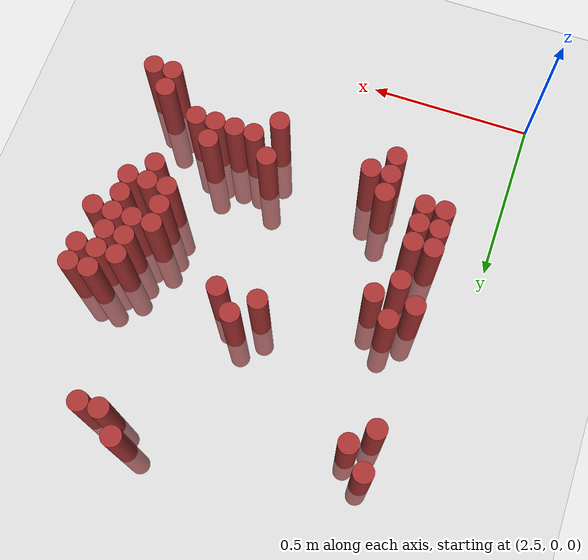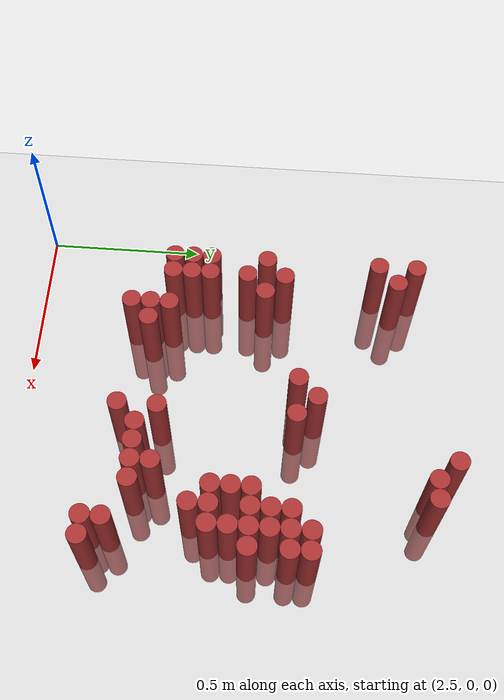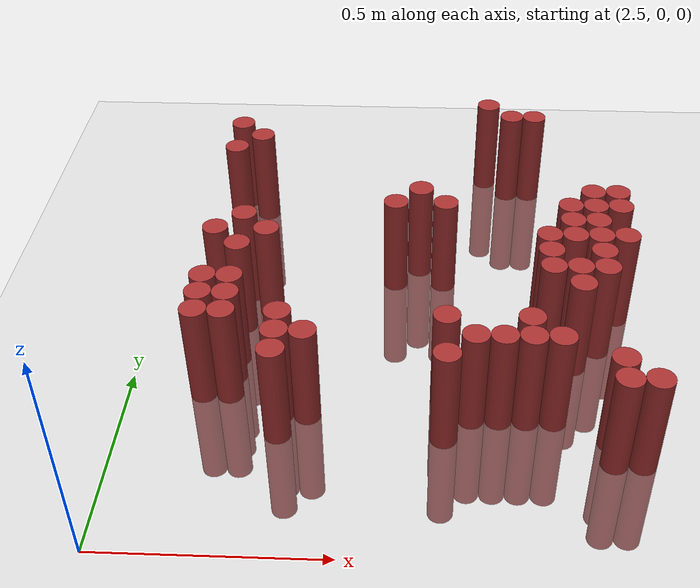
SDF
<sdf version="1.6">
 <world name="default">
  <model name="ground_plane">
   <static>1</static>
   <link name="link">
    <collision name="collision">
     <geometry><plane><normal>0 0 1</normal><size>100 100</size></plane></geometry>
     <surface><friction><ode><mu>100</mu><mu2>50</mu2></ode></friction></surface>
    </collision>
    <visual name="visual">
     <cast_shadows>0</cast_shadows>
     <geometry><plane><normal>0 0 1</normal><size>100 100</size></plane></geometry>
     <material>
      <script><uri>file://media/materials/scripts/gazebo.material</uri><name>Gazebo/Grey</name></script>
     </material>
    </visual>
   </link>
  </model>
  <model name="unit_cylinder_158">
   <static>1</static>
   <pose>3.330000 1.350000 0.000000 0.000000 0.000000 0.000000</pose>
   <link name="link">
    <inertial>
     <mass>1</mass>
     <inertia><ixx>0.145833</ixx><ixy>0</ixy><ixz>0</ixz><iyy>0.145833</iyy><iyz>0</iyz><izz>0.125</izz></inertia>
    </inertial>
    <collision name="collision">
     <geometry><cylinder><radius>0.030000</radius><length>0.5</length></cylinder></geometry>
    </collision>
    <visual name="visual">
     <geometry><cylinder><radius>0.030000</radius><length>0.5</length></cylinder></geometry>
     <material>
      <ambient>0.648000 0.192000 0.192000 1</ambient>
      <diffuse>0.648000 0.192000 0.192000 1</diffuse>
     </material>
     <material>
      <script><name>Gazebo/Grey</name><uri>file://media/materials/scripts/gazebo.material</uri></script>
     </material>
    </visual>
   </link>
  </model>
  <model name="unit_cylinder_162">
   <static>1</static>
   <pose>3.390000 1.290000 0.000000 0.000000 0.000000 0.000000</pose>
   <link name="link">
    <inertial>
     <mass>1</mass>
     <inertia><ixx>0.145833</ixx><ixy>0</ixy><ixz>0</ixz><iyy>0.145833</iyy><iyz>0</iyz><izz>0.125</izz></inertia>
    </inertial>
    <collision name="collision">
     <geometry><cylinder><radius>0.030000</radius><length>0.5</length></cylinder></geometry>
    </collision>
    <visual name="visual">
     <geometry><cylinder><radius>0.030000</radius><length>0.5</length></cylinder></geometry>
     <material>
      <ambient>0.648000 0.192000 0.192000 1</ambient>
      <diffuse>0.648000 0.192000 0.192000 1</diffuse>
     </material>
     <material>
      <script><name>Gazebo/Grey</name><uri>file://media/materials/scripts/gazebo.material</uri></script>
     </material>
    </visual>
   </link>
  </model>
  <model name="unit_cylinder_163">
   <static>1</static>
   <pose>3.450000 1.290000 0.000000 0.000000 0.000000 0.000000</pose>
   <link name="link">
    <inertial>
     <mass>1</mass>
     <inertia><ixx>0.145833</ixx><ixy>0</ixy><ixz>0</ixz><iyy>0.145833</iyy><iyz>0</iyz><izz>0.125</izz></inertia>
    </inertial>
    <collision name="collision">
     <geometry><cylinder><radius>0.030000</radius><length>0.5</length></cylinder></geometry>
    </collision>
    <visual name="visual">
     <geometry><cylinder><radius>0.030000</radius><length>0.5</length></cylinder></geometry>
     <material>
      <ambient>0.648000 0.192000 0.192000 1</ambient>
      <diffuse>0.648000 0.192000 0.192000 1</diffuse>
     </material>
     <material>
      <script><name>Gazebo/Grey</name><uri>file://media/materials/scripts/gazebo.material</uri></script>
     </material>
    </visual>
   </link>
  </model>
  <model name="unit_cylinder_164">
   <static>1</static>
   <pose>2.670000 1.230000 0.000000 0.000000 0.000000 0.000000</pose>
   <link name="link">
    <inertial>
     <mass>1</mass>
     <inertia><ixx>0.145833</ixx><ixy>0</ixy><ixz>0</ixz><iyy>0.145833</iyy><iyz>0</iyz><izz>0.125</izz></inertia>
    </inertial>
    <collision name="collision">
     <geometry><cylinder><radius>0.030000</radius><length>0.5</length></cylinder></geometry>
    </collision>
    <visual name="visual">
     <geometry><cylinder><radius>0.030000</radius><length>0.5</length></cylinder></geometry>
     <material>
      <ambient>0.648000 0.192000 0.192000 1</ambient>
      <diffuse>0.648000 0.192000 0.192000 1</diffuse>
     </material>
     <material>
      <script><name>Gazebo/Grey</name><uri>file://media/materials/scripts/gazebo.material</uri></script>
     </material>
    </visual>
   </link>
  </model>
  <model name="unit_cylinder_165">
   <static>1</static>
   <pose>2.730000 1.170000 0.000000 0.000000 0.000000 0.000000</pose>
   <link name="link">
    <inertial>
     <mass>1</mass>
     <inertia><ixx>0.145833</ixx><ixy>0</ixy><ixz>0</ixz><iyy>0.145833</iyy><iyz>0</iyz><izz>0.125</izz></inertia>
    </inertial>
    <collision name="collision">
     <geometry><cylinder><radius>0.030000</radius><length>0.5</length></cylinder></geometry>
    </collision>
    <visual name="visual">
     <geometry><cylinder><radius>0.030000</radius><length>0.5</length></cylinder></geometry>
     <material>
      <ambient>0.648000 0.192000 0.192000 1</ambient>
      <diffuse>0.648000 0.192000 0.192000 1</diffuse>
     </material>
     <material>
      <script><name>Gazebo/Grey</name><uri>file://media/materials/scripts/gazebo.material</uri></script>
     </material>
    </visual>
   </link>
  </model>
  <model name="unit_cylinder_167">
   <static>1</static>
   <pose>2.670000 1.110000 0.000000 0.000000 0.000000 0.000000</pose>
   <link name="link">
    <inertial>
     <mass>1</mass>
     <inertia><ixx>0.145833</ixx><ixy>0</ixy><ixz>0</ixz><iyy>0.145833</iyy><iyz>0</iyz><izz>0.125</izz></inertia>
    </inertial>
    <collision name="collision">
     <geometry><cylinder><radius>0.030000</radius><length>0.5</length></cylinder></geometry>
    </collision>
    <visual name="visual">
     <geometry><cylinder><radius>0.030000</radius><length>0.5</length></cylinder></geometry>
     <material>
      <ambient>0.648000 0.192000 0.192000 1</ambient>
      <diffuse>0.648000 0.192000 0.192000 1</diffuse>
     </material>
     <material>
      <script><name>Gazebo/Grey</name><uri>file://media/materials/scripts/gazebo.material</uri></script>
     </material>
    </visual>
   </link>
  </model>
  <model name="unit_cylinder_176">
   <static>1</static>
   <pose>3.150000 0.930000 0.000000 0.000000 0.000000 0.000000</pose>
   <link name="link">
    <inertial>
     <mass>1</mass>
     <inertia><ixx>0.145833</ixx><ixy>0</ixy><ixz>0</ixz><iyy>0.145833</iyy><iyz>0</iyz><izz>0.125</izz></inertia>
    </inertial>
    <collision name="collision">
     <geometry><cylinder><radius>0.030000</radius><length>0.5</length></cylinder></geometry>
    </collision>
    <visual name="visual">
     <geometry><cylinder><radius>0.030000</radius><length>0.5</length></cylinder></geometry>
     <material>
      <ambient>0.648000 0.192000 0.192000 1</ambient>
      <diffuse>0.648000 0.192000 0.192000 1</diffuse>
     </material>
     <material>
      <script><name>Gazebo/Grey</name><uri>file://media/materials/scripts/gazebo.material</uri></script>
     </material>
    </visual>
   </link>
  </model>
  <model name="unit_cylinder_177">
   <static>1</static>
   <pose>3.570000 0.930000 0.000000 0.000000 0.000000 0.000000</pose>
   <link name="link">
    <inertial>
     <mass>1</mass>
     <inertia><ixx>0.145833</ixx><ixy>0</ixy><ixz>0</ixz><iyy>0.145833</iyy><iyz>0</iyz><izz>0.125</izz></inertia>
    </inertial>
    <collision name="collision">
     <geometry><cylinder><radius>0.030000</radius><length>0.5</length></cylinder></geometry>
    </collision>
    <visual name="visual">
     <geometry><cylinder><radius>0.030000</radius><length>0.5</length></cylinder></geometry>
     <material>
      <ambient>0.648000 0.192000 0.192000 1</ambient>
      <diffuse>0.648000 0.192000 0.192000 1</diffuse>
     </material>
     <material>
      <script><name>Gazebo/Grey</name><uri>file://media/materials/scripts/gazebo.material</uri></script>
     </material>
    </visual>
   </link>
  </model>
  <model name="unit_cylinder_178">
   <static>1</static>
   <pose>3.630000 0.930000 0.000000 0.000000 0.000000 0.000000</pose>
   <link name="link">
    <inertial>
     <mass>1</mass>
     <inertia><ixx>0.145833</ixx><ixy>0</ixy><ixz>0</ixz><iyy>0.145833</iyy><iyz>0</iyz><izz>0.125</izz></inertia>
    </inertial>
    <collision name="collision">
     <geometry><cylinder><radius>0.030000</radius><length>0.5</length></cylinder></geometry>
    </collision>
    <visual name="visual">
     <geometry><cylinder><radius>0.030000</radius><length>0.5</length></cylinder></geometry>
     <material>
      <ambient>0.648000 0.192000 0.192000 1</ambient>
      <diffuse>0.648000 0.192000 0.192000 1</diffuse>
     </material>
     <material>
      <script><name>Gazebo/Grey</name><uri>file://media/materials/scripts/gazebo.material</uri></script>
     </material>
    </visual>
   </link>
  </model>
  <model name="unit_cylinder_180">
   <static>1</static>
   <pose>3.090000 0.870000 0.000000 0.000000 0.000000 0.000000</pose>
   <link name="link">
    <inertial>
     <mass>1</mass>
     <inertia><ixx>0.145833</ixx><ixy>0</ixy><ixz>0</ixz><iyy>0.145833</iyy><iyz>0</iyz><izz>0.125</izz></inertia>
    </inertial>
    <collision name="collision">
     <geometry><cylinder><radius>0.030000</radius><length>0.5</length></cylinder></geometry>
    </collision>
    <visual name="visual">
     <geometry><cylinder><radius>0.030000</radius><length>0.5</length></cylinder></geometry>
     <material>
      <ambient>0.648000 0.192000 0.192000 1</ambient>
      <diffuse>0.648000 0.192000 0.192000 1</diffuse>
     </material>
     <material>
      <script><name>Gazebo/Grey</name><uri>file://media/materials/scripts/gazebo.material</uri></script>
     </material>
    </visual>
   </link>
  </model>
  <model name="unit_cylinder_181">
   <static>1</static>
   <pose>3.210000 0.870000 0.000000 0.000000 0.000000 0.000000</pose>
   <link name="link">
    <inertial>
     <mass>1</mass>
     <inertia><ixx>0.145833</ixx><ixy>0</ixy><ixz>0</ixz><iyy>0.145833</iyy><iyz>0</iyz><izz>0.125</izz></inertia>
    </inertial>
    <collision name="collision">
     <geometry><cylinder><radius>0.030000</radius><length>0.5</length></cylinder></geometry>
    </collision>
    <visual name="visual">
     <geometry><cylinder><radius>0.030000</radius><length>0.5</length></cylinder></geometry>
     <material>
      <ambient>0.648000 0.192000 0.192000 1</ambient>
      <diffuse>0.648000 0.192000 0.192000 1</diffuse>
     </material>
     <material>
      <script><name>Gazebo/Grey</name><uri>file://media/materials/scripts/gazebo.material</uri></script>
     </material>
    </visual>
   </link>
  </model>
  <model name="unit_cylinder_182">
   <static>1</static>
   <pose>3.510000 0.870000 0.000000 0.000000 0.000000 0.000000</pose>
   <link name="link">
    <inertial>
     <mass>1</mass>
     <inertia><ixx>0.145833</ixx><ixy>0</ixy><ixz>0</ixz><iyy>0.145833</iyy><iyz>0</iyz><izz>0.125</izz></inertia>
    </inertial>
    <collision name="collision">
     <geometry><cylinder><radius>0.030000</radius><length>0.5</length></cylinder></geometry>
    </collision>
    <visual name="visual">
     <geometry><cylinder><radius>0.030000</radius><length>0.5</length></cylinder></geometry>
     <material>
      <ambient>0.648000 0.192000 0.192000 1</ambient>
      <diffuse>0.648000 0.192000 0.192000 1</diffuse>
     </material>
     <material>
      <script><name>Gazebo/Grey</name><uri>file://media/materials/scripts/gazebo.material</uri></script>
     </material>
    </visual>
   </link>
  </model>
  <model name="unit_cylinder_183">
   <static>1</static>
   <pose>3.570000 0.870000 0.000000 0.000000 0.000000 0.000000</pose>
   <link name="link">
    <inertial>
     <mass>1</mass>
     <inertia><ixx>0.145833</ixx><ixy>0</ixy><ixz>0</ixz><iyy>0.145833</iyy><iyz>0</iyz><izz>0.125</izz></inertia>
    </inertial>
    <collision name="collision">
     <geometry><cylinder><radius>0.030000</radius><length>0.5</length></cylinder></geometry>
    </collision>
    <visual name="visual">
     <geometry><cylinder><radius>0.030000</radius><length>0.5</length></cylinder></geometry>
     <material>
      <ambient>0.648000 0.192000 0.192000 1</ambient>
      <diffuse>0.648000 0.192000 0.192000 1</diffuse>
     </material>
     <material>
      <script><name>Gazebo/Grey</name><uri>file://media/materials/scripts/gazebo.material</uri></script>
     </material>
    </visual>
   </link>
  </model>
  <model name="unit_cylinder_184">
   <static>1</static>
   <pose>3.630000 0.870000 0.000000 0.000000 0.000000 0.000000</pose>
   <link name="link">
    <inertial>
     <mass>1</mass>
     <inertia><ixx>0.145833</ixx><ixy>0</ixy><ixz>0</ixz><iyy>0.145833</iyy><iyz>0</iyz><izz>0.125</izz></inertia>
    </inertial>
    <collision name="collision">
     <geometry><cylinder><radius>0.030000</radius><length>0.5</length></cylinder></geometry>
    </collision>
    <visual name="visual">
     <geometry><cylinder><radius>0.030000</radius><length>0.5</length></cylinder></geometry>
     <material>
      <ambient>0.648000 0.192000 0.192000 1</ambient>
      <diffuse>0.648000 0.192000 0.192000 1</diffuse>
     </material>
     <material>
      <script><name>Gazebo/Grey</name><uri>file://media/materials/scripts/gazebo.material</uri></script>
     </material>
    </visual>
   </link>
  </model>
  <model name="unit_cylinder_185">
   <static>1</static>
   <pose>2.730000 0.810000 0.000000 0.000000 0.000000 0.000000</pose>
   <link name="link">
    <inertial>
     <mass>1</mass>
     <inertia><ixx>0.145833</ixx><ixy>0</ixy><ixz>0</ixz><iyy>0.145833</iyy><iyz>0</iyz><izz>0.125</izz></inertia>
    </inertial>
    <collision name="collision">
     <geometry><cylinder><radius>0.030000</radius><length>0.5</length></cylinder></geometry>
    </collision>
    <visual name="visual">
     <geometry><cylinder><radius>0.030000</radius><length>0.5</length></cylinder></geometry>
     <material>
      <ambient>0.648000 0.192000 0.192000 1</ambient>
      <diffuse>0.648000 0.192000 0.192000 1</diffuse>
     </material>
     <material>
      <script><name>Gazebo/Grey</name><uri>file://media/materials/scripts/gazebo.material</uri></script>
     </material>
    </visual>
   </link>
  </model>
  <model name="unit_cylinder_186">
   <static>1</static>
   <pose>3.510000 0.810000 0.000000 0.000000 0.000000 0.000000</pose>
   <link name="link">
    <inertial>
     <mass>1</mass>
     <inertia><ixx>0.145833</ixx><ixy>0</ixy><ixz>0</ixz><iyy>0.145833</iyy><iyz>0</iyz><izz>0.125</izz></inertia>
    </inertial>
    <collision name="collision">
     <geometry><cylinder><radius>0.030000</radius><length>0.5</length></cylinder></geometry>
    </collision>
    <visual name="visual">
     <geometry><cylinder><radius>0.030000</radius><length>0.5</length></cylinder></geometry>
     <material>
      <ambient>0.648000 0.192000 0.192000 1</ambient>
      <diffuse>0.648000 0.192000 0.192000 1</diffuse>
     </material>
     <material>
      <script><name>Gazebo/Grey</name><uri>file://media/materials/scripts/gazebo.material</uri></script>
     </material>
    </visual>
   </link>
  </model>
  <model name="unit_cylinder_187">
   <static>1</static>
   <pose>3.570000 0.810000 0.000000 0.000000 0.000000 0.000000</pose>
   <link name="link">
    <inertial>
     <mass>1</mass>
     <inertia><ixx>0.145833</ixx><ixy>0</ixy><ixz>0</ixz><iyy>0.145833</iyy><iyz>0</iyz><izz>0.125</izz></inertia>
    </inertial>
    <collision name="collision">
     <geometry><cylinder><radius>0.030000</radius><length>0.5</length></cylinder></geometry>
    </collision>
    <visual name="visual">
     <geometry><cylinder><radius>0.030000</radius><length>0.5</length></cylinder></geometry>
     <material>
      <ambient>0.648000 0.192000 0.192000 1</ambient>
      <diffuse>0.648000 0.192000 0.192000 1</diffuse>
     </material>
     <material>
      <script><name>Gazebo/Grey</name><uri>file://media/materials/scripts/gazebo.material</uri></script>
     </material>
    </visual>
   </link>
  </model>
  <model name="unit_cylinder_189">
   <static>1</static>
   <pose>2.670000 0.750000 0.000000 0.000000 0.000000 0.000000</pose>
   <link name="link">
    <inertial>
     <mass>1</mass>
     <inertia><ixx>0.145833</ixx><ixy>0</ixy><ixz>0</ixz><iyy>0.145833</iyy><iyz>0</iyz><izz>0.125</izz></inertia>
    </inertial>
    <collision name="collision">
     <geometry><cylinder><radius>0.030000</radius><length>0.5</length></cylinder></geometry>
    </collision>
    <visual name="visual">
     <geometry><cylinder><radius>0.030000</radius><length>0.5</length></cylinder></geometry>
     <material>
      <ambient>0.648000 0.192000 0.192000 1</ambient>
      <diffuse>0.648000 0.192000 0.192000 1</diffuse>
     </material>
     <material>
      <script><name>Gazebo/Grey</name><uri>file://media/materials/scripts/gazebo.material</uri></script>
     </material>
    </visual>
   </link>
  </model>
  <model name="unit_cylinder_190">
   <static>1</static>
   <pose>2.790000 0.750000 0.000000 0.000000 0.000000 0.000000</pose>
   <link name="link">
    <inertial>
     <mass>1</mass>
     <inertia><ixx>0.145833</ixx><ixy>0</ixy><ixz>0</ixz><iyy>0.145833</iyy><iyz>0</iyz><izz>0.125</izz></inertia>
    </inertial>
    <collision name="collision">
     <geometry><cylinder><radius>0.030000</radius><length>0.5</length></cylinder></geometry>
    </collision>
    <visual name="visual">
     <geometry><cylinder><radius>0.030000</radius><length>0.5</length></cylinder></geometry>
     <material>
      <ambient>0.648000 0.192000 0.192000 1</ambient>
      <diffuse>0.648000 0.192000 0.192000 1</diffuse>
     </material>
     <material>
      <script><name>Gazebo/Grey</name><uri>file://media/materials/scripts/gazebo.material</uri></script>
     </material>
    </visual>
   </link>
  </model>
  <model name="unit_cylinder_191">
   <static>1</static>
   <pose>3.450000 0.750000 0.000000 0.000000 0.000000 0.000000</pose>
   <link name="link">
    <inertial>
     <mass>1</mass>
     <inertia><ixx>0.145833</ixx><ixy>0</ixy><ixz>0</ixz><iyy>0.145833</iyy><iyz>0</iyz><izz>0.125</izz></inertia>
    </inertial>
    <collision name="collision">
     <geometry><cylinder><radius>0.030000</radius><length>0.5</length></cylinder></geometry>
    </collision>
    <visual name="visual">
     <geometry><cylinder><radius>0.030000</radius><length>0.5</length></cylinder></geometry>
     <material>
      <ambient>0.648000 0.192000 0.192000 1</ambient>
      <diffuse>0.648000 0.192000 0.192000 1</diffuse>
     </material>
     <material>
      <script><name>Gazebo/Grey</name><uri>file://media/materials/scripts/gazebo.material</uri></script>
     </material>
    </visual>
   </link>
  </model>
  <model name="unit_cylinder_192">
   <static>1</static>
   <pose>3.510000 0.750000 0.000000 0.000000 0.000000 0.000000</pose>
   <link name="link">
    <inertial>
     <mass>1</mass>
     <inertia><ixx>0.145833</ixx><ixy>0</ixy><ixz>0</ixz><iyy>0.145833</iyy><iyz>0</iyz><izz>0.125</izz></inertia>
    </inertial>
    <collision name="collision">
     <geometry><cylinder><radius>0.030000</radius><length>0.5</length></cylinder></geometry>
    </collision>
    <visual name="visual">
     <geometry><cylinder><radius>0.030000</radius><length>0.5</length></cylinder></geometry>
     <material>
      <ambient>0.648000 0.192000 0.192000 1</ambient>
      <diffuse>0.648000 0.192000 0.192000 1</diffuse>
     </material>
     <material>
      <script><name>Gazebo/Grey</name><uri>file://media/materials/scripts/gazebo.material</uri></script>
     </material>
    </visual>
   </link>
  </model>
  <model name="unit_cylinder_193">
   <static>1</static>
   <pose>3.570000 0.750000 0.000000 0.000000 0.000000 0.000000</pose>
   <link name="link">
    <inertial>
     <mass>1</mass>
     <inertia><ixx>0.145833</ixx><ixy>0</ixy><ixz>0</ixz><iyy>0.145833</iyy><iyz>0</iyz><izz>0.125</izz></inertia>
    </inertial>
    <collision name="collision">
     <geometry><cylinder><radius>0.030000</radius><length>0.5</length></cylinder></geometry>
    </collision>
    <visual name="visual">
     <geometry><cylinder><radius>0.030000</radius><length>0.5</length></cylinder></geometry>
     <material>
      <ambient>0.648000 0.192000 0.192000 1</ambient>
      <diffuse>0.648000 0.192000 0.192000 1</diffuse>
     </material>
     <material>
      <script><name>Gazebo/Grey</name><uri>file://media/materials/scripts/gazebo.material</uri></script>
     </material>
    </visual>
   </link>
  </model>
  <model name="unit_cylinder_194">
   <static>1</static>
   <pose>3.630000 0.750000 0.000000 0.000000 0.000000 0.000000</pose>
   <link name="link">
    <inertial>
     <mass>1</mass>
     <inertia><ixx>0.145833</ixx><ixy>0</ixy><ixz>0</ixz><iyy>0.145833</iyy><iyz>0</iyz><izz>0.125</izz></inertia>
    </inertial>
    <collision name="collision">
     <geometry><cylinder><radius>0.030000</radius><length>0.5</length></cylinder></geometry>
    </collision>
    <visual name="visual">
     <geometry><cylinder><radius>0.030000</radius><length>0.5</length></cylinder></geometry>
     <material>
      <ambient>0.648000 0.192000 0.192000 1</ambient>
      <diffuse>0.648000 0.192000 0.192000 1</diffuse>
     </material>
     <material>
      <script><name>Gazebo/Grey</name><uri>file://media/materials/scripts/gazebo.material</uri></script>
     </material>
    </visual>
   </link>
  </model>
  <model name="unit_cylinder_197">
   <static>1</static>
   <pose>2.730000 0.690000 0.000000 0.000000 0.000000 0.000000</pose>
   <link name="link">
    <inertial>
     <mass>1</mass>
     <inertia><ixx>0.145833</ixx><ixy>0</ixy><ixz>0</ixz><iyy>0.145833</iyy><iyz>0</iyz><izz>0.125</izz></inertia>
    </inertial>
    <collision name="collision">
     <geometry><cylinder><radius>0.030000</radius><length>0.5</length></cylinder></geometry>
    </collision>
    <visual name="visual">
     <geometry><cylinder><radius>0.030000</radius><length>0.5</length></cylinder></geometry>
     <material>
      <ambient>0.648000 0.192000 0.192000 1</ambient>
      <diffuse>0.648000 0.192000 0.192000 1</diffuse>
     </material>
     <material>
      <script><name>Gazebo/Grey</name><uri>file://media/materials/scripts/gazebo.material</uri></script>
     </material>
    </visual>
   </link>
  </model>
  <model name="unit_cylinder_198">
   <static>1</static>
   <pose>3.450000 0.690000 0.000000 0.000000 0.000000 0.000000</pose>
   <link name="link">
    <inertial>
     <mass>1</mass>
     <inertia><ixx>0.145833</ixx><ixy>0</ixy><ixz>0</ixz><iyy>0.145833</iyy><iyz>0</iyz><izz>0.125</izz></inertia>
    </inertial>
    <collision name="collision">
     <geometry><cylinder><radius>0.030000</radius><length>0.5</length></cylinder></geometry>
    </collision>
    <visual name="visual">
     <geometry><cylinder><radius>0.030000</radius><length>0.5</length></cylinder></geometry>
     <material>
      <ambient>0.648000 0.192000 0.192000 1</ambient>
      <diffuse>0.648000 0.192000 0.192000 1</diffuse>
     </material>
     <material>
      <script><name>Gazebo/Grey</name><uri>file://media/materials/scripts/gazebo.material</uri></script>
     </material>
    </visual>
   </link>
  </model>
  <model name="unit_cylinder_199">
   <static>1</static>
   <pose>3.570000 0.690000 0.000000 0.000000 0.000000 0.000000</pose>
   <link name="link">
    <inertial>
     <mass>1</mass>
     <inertia><ixx>0.145833</ixx><ixy>0</ixy><ixz>0</ixz><iyy>0.145833</iyy><iyz>0</iyz><izz>0.125</izz></inertia>
    </inertial>
    <collision name="collision">
     <geometry><cylinder><radius>0.030000</radius><length>0.5</length></cylinder></geometry>
    </collision>
    <visual name="visual">
     <geometry><cylinder><radius>0.030000</radius><length>0.5</length></cylinder></geometry>
     <material>
      <ambient>0.648000 0.192000 0.192000 1</ambient>
      <diffuse>0.648000 0.192000 0.192000 1</diffuse>
     </material>
     <material>
      <script><name>Gazebo/Grey</name><uri>file://media/materials/scripts/gazebo.material</uri></script>
     </material>
    </visual>
   </link>
  </model>
  <model name="unit_cylinder_201">
   <static>1</static>
   <pose>3.450000 0.630000 0.000000 0.000000 0.000000 0.000000</pose>
   <link name="link">
    <inertial>
     <mass>1</mass>
     <inertia><ixx>0.145833</ixx><ixy>0</ixy><ixz>0</ixz><iyy>0.145833</iyy><iyz>0</iyz><izz>0.125</izz></inertia>
    </inertial>
    <collision name="collision">
     <geometry><cylinder><radius>0.030000</radius><length>0.5</length></cylinder></geometry>
    </collision>
    <visual name="visual">
     <geometry><cylinder><radius>0.030000</radius><length>0.5</length></cylinder></geometry>
     <material>
      <ambient>0.648000 0.192000 0.192000 1</ambient>
      <diffuse>0.648000 0.192000 0.192000 1</diffuse>
     </material>
     <material>
      <script><name>Gazebo/Grey</name><uri>file://media/materials/scripts/gazebo.material</uri></script>
     </material>
    </visual>
   </link>
  </model>
  <model name="unit_cylinder_202">
   <static>1</static>
   <pose>3.510000 0.630000 0.000000 0.000000 0.000000 0.000000</pose>
   <link name="link">
    <inertial>
     <mass>1</mass>
     <inertia><ixx>0.145833</ixx><ixy>0</ixy><ixz>0</ixz><iyy>0.145833</iyy><iyz>0</iyz><izz>0.125</izz></inertia>
    </inertial>
    <collision name="collision">
     <geometry><cylinder><radius>0.030000</radius><length>0.5</length></cylinder></geometry>
    </collision>
    <visual name="visual">
     <geometry><cylinder><radius>0.030000</radius><length>0.5</length></cylinder></geometry>
     <material>
      <ambient>0.648000 0.192000 0.192000 1</ambient>
      <diffuse>0.648000 0.192000 0.192000 1</diffuse>
     </material>
     <material>
      <script><name>Gazebo/Grey</name><uri>file://media/materials/scripts/gazebo.material</uri></script>
     </material>
    </visual>
   </link>
  </model>
  <model name="unit_cylinder_203">
   <static>1</static>
   <pose>3.570000 0.630000 0.000000 0.000000 0.000000 0.000000</pose>
   <link name="link">
    <inertial>
     <mass>1</mass>
     <inertia><ixx>0.145833</ixx><ixy>0</ixy><ixz>0</ixz><iyy>0.145833</iyy><iyz>0</iyz><izz>0.125</izz></inertia>
    </inertial>
    <collision name="collision">
     <geometry><cylinder><radius>0.030000</radius><length>0.5</length></cylinder></geometry>
    </collision>
    <visual name="visual">
     <geometry><cylinder><radius>0.030000</radius><length>0.5</length></cylinder></geometry>
     <material>
      <ambient>0.648000 0.192000 0.192000 1</ambient>
      <diffuse>0.648000 0.192000 0.192000 1</diffuse>
     </material>
     <material>
      <script><name>Gazebo/Grey</name><uri>file://media/materials/scripts/gazebo.material</uri></script>
     </material>
    </visual>
   </link>
  </model>
  <model name="unit_cylinder_204">
   <static>1</static>
   <pose>2.670000 0.570000 0.000000 0.000000 0.000000 0.000000</pose>
   <link name="link">
    <inertial>
     <mass>1</mass>
     <inertia><ixx>0.145833</ixx><ixy>0</ixy><ixz>0</ixz><iyy>0.145833</iyy><iyz>0</iyz><izz>0.125</izz></inertia>
    </inertial>
    <collision name="collision">
     <geometry><cylinder><radius>0.030000</radius><length>0.5</length></cylinder></geometry>
    </collision>
    <visual name="visual">
     <geometry><cylinder><radius>0.030000</radius><length>0.5</length></cylinder></geometry>
     <material>
      <ambient>0.648000 0.192000 0.192000 1</ambient>
      <diffuse>0.648000 0.192000 0.192000 1</diffuse>
     </material>
     <material>
      <script><name>Gazebo/Grey</name><uri>file://media/materials/scripts/gazebo.material</uri></script>
     </material>
    </visual>
   </link>
  </model>
  <model name="unit_cylinder_205">
   <static>1</static>
   <pose>2.730000 0.570000 0.000000 0.000000 0.000000 0.000000</pose>
   <link name="link">
    <inertial>
     <mass>1</mass>
     <inertia><ixx>0.145833</ixx><ixy>0</ixy><ixz>0</ixz><iyy>0.145833</iyy><iyz>0</iyz><izz>0.125</izz></inertia>
    </inertial>
    <collision name="collision">
     <geometry><cylinder><radius>0.030000</radius><length>0.5</length></cylinder></geometry>
    </collision>
    <visual name="visual">
     <geometry><cylinder><radius>0.030000</radius><length>0.5</length></cylinder></geometry>
     <material>
      <ambient>0.648000 0.192000 0.192000 1</ambient>
      <diffuse>0.648000 0.192000 0.192000 1</diffuse>
     </material>
     <material>
      <script><name>Gazebo/Grey</name><uri>file://media/materials/scripts/gazebo.material</uri></script>
     </material>
    </visual>
   </link>
  </model>
  <model name="unit_cylinder_206">
   <static>1</static>
   <pose>3.510000 0.570000 0.000000 0.000000 0.000000 0.000000</pose>
   <link name="link">
    <inertial>
     <mass>1</mass>
     <inertia><ixx>0.145833</ixx><ixy>0</ixy><ixz>0</ixz><iyy>0.145833</iyy><iyz>0</iyz><izz>0.125</izz></inertia>
    </inertial>
    <collision name="collision">
     <geometry><cylinder><radius>0.030000</radius><length>0.5</length></cylinder></geometry>
    </collision>
    <visual name="visual">
     <geometry><cylinder><radius>0.030000</radius><length>0.5</length></cylinder></geometry>
     <material>
      <ambient>0.648000 0.192000 0.192000 1</ambient>
      <diffuse>0.648000 0.192000 0.192000 1</diffuse>
     </material>
     <material>
      <script><name>Gazebo/Grey</name><uri>file://media/materials/scripts/gazebo.material</uri></script>
     </material>
    </visual>
   </link>
  </model>
  <model name="unit_cylinder_207">
   <static>1</static>
   <pose>2.670000 0.510000 0.000000 0.000000 0.000000 0.000000</pose>
   <link name="link">
    <inertial>
     <mass>1</mass>
     <inertia><ixx>0.145833</ixx><ixy>0</ixy><ixz>0</ixz><iyy>0.145833</iyy><iyz>0</iyz><izz>0.125</izz></inertia>
    </inertial>
    <collision name="collision">
     <geometry><cylinder><radius>0.030000</radius><length>0.5</length></cylinder></geometry>
    </collision>
    <visual name="visual">
     <geometry><cylinder><radius>0.030000</radius><length>0.5</length></cylinder></geometry>
     <material>
      <ambient>0.648000 0.192000 0.192000 1</ambient>
      <diffuse>0.648000 0.192000 0.192000 1</diffuse>
     </material>
     <material>
      <script><name>Gazebo/Grey</name><uri>file://media/materials/scripts/gazebo.material</uri></script>
     </material>
    </visual>
   </link>
  </model>
  <model name="unit_cylinder_208">
   <static>1</static>
   <pose>2.730000 0.510000 0.000000 0.000000 0.000000 0.000000</pose>
   <link name="link">
    <inertial>
     <mass>1</mass>
     <inertia><ixx>0.145833</ixx><ixy>0</ixy><ixz>0</ixz><iyy>0.145833</iyy><iyz>0</iyz><izz>0.125</izz></inertia>
    </inertial>
    <collision name="collision">
     <geometry><cylinder><radius>0.030000</radius><length>0.5</length></cylinder></geometry>
    </collision>
    <visual name="visual">
     <geometry><cylinder><radius>0.030000</radius><length>0.5</length></cylinder></geometry>
     <material>
      <ambient>0.648000 0.192000 0.192000 1</ambient>
      <diffuse>0.648000 0.192000 0.192000 1</diffuse>
     </material>
     <material>
      <script><name>Gazebo/Grey</name><uri>file://media/materials/scripts/gazebo.material</uri></script>
     </material>
    </visual>
   </link>
  </model>
  <model name="unit_cylinder_210">
   <static>1</static>
   <pose>2.670000 0.450000 0.000000 0.000000 0.000000 0.000000</pose>
   <link name="link">
    <inertial>
     <mass>1</mass>
     <inertia><ixx>0.145833</ixx><ixy>0</ixy><ixz>0</ixz><iyy>0.145833</iyy><iyz>0</iyz><izz>0.125</izz></inertia>
    </inertial>
    <collision name="collision">
     <geometry><cylinder><radius>0.030000</radius><length>0.5</length></cylinder></geometry>
    </collision>
    <visual name="visual">
     <geometry><cylinder><radius>0.030000</radius><length>0.5</length></cylinder></geometry>
     <material>
      <ambient>0.648000 0.192000 0.192000 1</ambient>
      <diffuse>0.648000 0.192000 0.192000 1</diffuse>
     </material>
     <material>
      <script><name>Gazebo/Grey</name><uri>file://media/materials/scripts/gazebo.material</uri></script>
     </material>
    </visual>
   </link>
  </model>
  <model name="unit_cylinder_211">
   <static>1</static>
   <pose>2.730000 0.450000 0.000000 0.000000 0.000000 0.000000</pose>
   <link name="link">
    <inertial>
     <mass>1</mass>
     <inertia><ixx>0.145833</ixx><ixy>0</ixy><ixz>0</ixz><iyy>0.145833</iyy><iyz>0</iyz><izz>0.125</izz></inertia>
    </inertial>
    <collision name="collision">
     <geometry><cylinder><radius>0.030000</radius><length>0.5</length></cylinder></geometry>
    </collision>
    <visual name="visual">
     <geometry><cylinder><radius>0.030000</radius><length>0.5</length></cylinder></geometry>
     <material>
      <ambient>0.648000 0.192000 0.192000 1</ambient>
      <diffuse>0.648000 0.192000 0.192000 1</diffuse>
     </material>
     <material>
      <script><name>Gazebo/Grey</name><uri>file://media/materials/scripts/gazebo.material</uri></script>
     </material>
    </visual>
   </link>
  </model>
  <model name="unit_cylinder_212">
   <static>1</static>
   <pose>2.850000 0.450000 0.000000 0.000000 0.000000 0.000000</pose>
   <link name="link">
    <inertial>
     <mass>1</mass>
     <inertia><ixx>0.145833</ixx><ixy>0</ixy><ixz>0</ixz><iyy>0.145833</iyy><iyz>0</iyz><izz>0.125</izz></inertia>
    </inertial>
    <collision name="collision">
     <geometry><cylinder><radius>0.030000</radius><length>0.5</length></cylinder></geometry>
    </collision>
    <visual name="visual">
     <geometry><cylinder><radius>0.030000</radius><length>0.5</length></cylinder></geometry>
     <material>
      <ambient>0.648000 0.192000 0.192000 1</ambient>
      <diffuse>0.648000 0.192000 0.192000 1</diffuse>
     </material>
     <material>
      <script><name>Gazebo/Grey</name><uri>file://media/materials/scripts/gazebo.material</uri></script>
     </material>
    </visual>
   </link>
  </model>
  <model name="unit_cylinder_213">
   <static>1</static>
   <pose>3.210000 0.450000 0.000000 0.000000 0.000000 0.000000</pose>
   <link name="link">
    <inertial>
     <mass>1</mass>
     <inertia><ixx>0.145833</ixx><ixy>0</ixy><ixz>0</ixz><iyy>0.145833</iyy><iyz>0</iyz><izz>0.125</izz></inertia>
    </inertial>
    <collision name="collision">
     <geometry><cylinder><radius>0.030000</radius><length>0.5</length></cylinder></geometry>
    </collision>
    <visual name="visual">
     <geometry><cylinder><radius>0.030000</radius><length>0.5</length></cylinder></geometry>
     <material>
      <ambient>0.648000 0.192000 0.192000 1</ambient>
      <diffuse>0.648000 0.192000 0.192000 1</diffuse>
     </material>
     <material>
      <script><name>Gazebo/Grey</name><uri>file://media/materials/scripts/gazebo.material</uri></script>
     </material>
    </visual>
   </link>
  </model>
  <model name="unit_cylinder_214">
   <static>1</static>
   <pose>3.390000 0.450000 0.000000 0.000000 0.000000 0.000000</pose>
   <link name="link">
    <inertial>
     <mass>1</mass>
     <inertia><ixx>0.145833</ixx><ixy>0</ixy><ixz>0</ixz><iyy>0.145833</iyy><iyz>0</iyz><izz>0.125</izz></inertia>
    </inertial>
    <collision name="collision">
     <geometry><cylinder><radius>0.030000</radius><length>0.5</length></cylinder></geometry>
    </collision>
    <visual name="visual">
     <geometry><cylinder><radius>0.030000</radius><length>0.5</length></cylinder></geometry>
     <material>
      <ambient>0.648000 0.192000 0.192000 1</ambient>
      <diffuse>0.648000 0.192000 0.192000 1</diffuse>
     </material>
     <material>
      <script><name>Gazebo/Grey</name><uri>file://media/materials/scripts/gazebo.material</uri></script>
     </material>
    </visual>
   </link>
  </model>
  <model name="unit_cylinder_218">
   <static>1</static>
   <pose>2.850000 0.390000 0.000000 0.000000 0.000000 0.000000</pose>
   <link name="link">
    <inertial>
     <mass>1</mass>
     <inertia><ixx>0.145833</ixx><ixy>0</ixy><ixz>0</ixz><iyy>0.145833</iyy><iyz>0</iyz><izz>0.125</izz></inertia>
    </inertial>
    <collision name="collision">
     <geometry><cylinder><radius>0.030000</radius><length>0.5</length></cylinder></geometry>
    </collision>
    <visual name="visual">
     <geometry><cylinder><radius>0.030000</radius><length>0.5</length></cylinder></geometry>
     <material>
      <ambient>0.648000 0.192000 0.192000 1</ambient>
      <diffuse>0.648000 0.192000 0.192000 1</diffuse>
     </material>
     <material>
      <script><name>Gazebo/Grey</name><uri>file://media/materials/scripts/gazebo.material</uri></script>
     </material>
    </visual>
   </link>
  </model>
  <model name="unit_cylinder_219">
   <static>1</static>
   <pose>2.910000 0.390000 0.000000 0.000000 0.000000 0.000000</pose>
   <link name="link">
    <inertial>
     <mass>1</mass>
     <inertia><ixx>0.145833</ixx><ixy>0</ixy><ixz>0</ixz><iyy>0.145833</iyy><iyz>0</iyz><izz>0.125</izz></inertia>
    </inertial>
    <collision name="collision">
     <geometry><cylinder><radius>0.030000</radius><length>0.5</length></cylinder></geometry>
    </collision>
    <visual name="visual">
     <geometry><cylinder><radius>0.030000</radius><length>0.5</length></cylinder></geometry>
     <material>
      <ambient>0.648000 0.192000 0.192000 1</ambient>
      <diffuse>0.648000 0.192000 0.192000 1</diffuse>
     </material>
     <material>
      <script><name>Gazebo/Grey</name><uri>file://media/materials/scripts/gazebo.material</uri></script>
     </material>
    </visual>
   </link>
  </model>
  <model name="unit_cylinder_220">
   <static>1</static>
   <pose>3.270000 0.390000 0.000000 0.000000 0.000000 0.000000</pose>
   <link name="link">
    <inertial>
     <mass>1</mass>
     <inertia><ixx>0.145833</ixx><ixy>0</ixy><ixz>0</ixz><iyy>0.145833</iyy><iyz>0</iyz><izz>0.125</izz></inertia>
    </inertial>
    <collision name="collision">
     <geometry><cylinder><radius>0.030000</radius><length>0.5</length></cylinder></geometry>
    </collision>
    <visual name="visual">
     <geometry><cylinder><radius>0.030000</radius><length>0.5</length></cylinder></geometry>
     <material>
      <ambient>0.648000 0.192000 0.192000 1</ambient>
      <diffuse>0.648000 0.192000 0.192000 1</diffuse>
     </material>
     <material>
      <script><name>Gazebo/Grey</name><uri>file://media/materials/scripts/gazebo.material</uri></script>
     </material>
    </visual>
   </link>
  </model>
  <model name="unit_cylinder_221">
   <static>1</static>
   <pose>3.330000 0.390000 0.000000 0.000000 0.000000 0.000000</pose>
   <link name="link">
    <inertial>
     <mass>1</mass>
     <inertia><ixx>0.145833</ixx><ixy>0</ixy><ixz>0</ixz><iyy>0.145833</iyy><iyz>0</iyz><izz>0.125</izz></inertia>
    </inertial>
    <collision name="collision">
     <geometry><cylinder><radius>0.030000</radius><length>0.5</length></cylinder></geometry>
    </collision>
    <visual name="visual">
     <geometry><cylinder><radius>0.030000</radius><length>0.5</length></cylinder></geometry>
     <material>
      <ambient>0.648000 0.192000 0.192000 1</ambient>
      <diffuse>0.648000 0.192000 0.192000 1</diffuse>
     </material>
     <material>
      <script><name>Gazebo/Grey</name><uri>file://media/materials/scripts/gazebo.material</uri></script>
     </material>
    </visual>
   </link>
  </model>
  <model name="unit_cylinder_222">
   <static>1</static>
   <pose>3.390000 0.390000 0.000000 0.000000 0.000000 0.000000</pose>
   <link name="link">
    <inertial>
     <mass>1</mass>
     <inertia><ixx>0.145833</ixx><ixy>0</ixy><ixz>0</ixz><iyy>0.145833</iyy><iyz>0</iyz><izz>0.125</izz></inertia>
    </inertial>
    <collision name="collision">
     <geometry><cylinder><radius>0.030000</radius><length>0.5</length></cylinder></geometry>
    </collision>
    <visual name="visual">
     <geometry><cylinder><radius>0.030000</radius><length>0.5</length></cylinder></geometry>
     <material>
      <ambient>0.648000 0.192000 0.192000 1</ambient>
      <diffuse>0.648000 0.192000 0.192000 1</diffuse>
     </material>
     <material>
      <script><name>Gazebo/Grey</name><uri>file://media/materials/scripts/gazebo.material</uri></script>
     </material>
    </visual>
   </link>
  </model>
  <model name="unit_cylinder_223">
   <static>1</static>
   <pose>3.450000 0.390000 0.000000 0.000000 0.000000 0.000000</pose>
   <link name="link">
    <inertial>
     <mass>1</mass>
     <inertia><ixx>0.145833</ixx><ixy>0</ixy><ixz>0</ixz><iyy>0.145833</iyy><iyz>0</iyz><izz>0.125</izz></inertia>
    </inertial>
    <collision name="collision">
     <geometry><cylinder><radius>0.030000</radius><length>0.5</length></cylinder></geometry>
    </collision>
    <visual name="visual">
     <geometry><cylinder><radius>0.030000</radius><length>0.5</length></cylinder></geometry>
     <material>
      <ambient>0.648000 0.192000 0.192000 1</ambient>
      <diffuse>0.648000 0.192000 0.192000 1</diffuse>
     </material>
     <material>
      <script><name>Gazebo/Grey</name><uri>file://media/materials/scripts/gazebo.material</uri></script>
     </material>
    </visual>
   </link>
  </model>
  <model name="unit_cylinder_229">
   <static>1</static>
   <pose>2.850000 0.330000 0.000000 0.000000 0.000000 0.000000</pose>
   <link name="link">
    <inertial>
     <mass>1</mass>
     <inertia><ixx>0.145833</ixx><ixy>0</ixy><ixz>0</ixz><iyy>0.145833</iyy><iyz>0</iyz><izz>0.125</izz></inertia>
    </inertial>
    <collision name="collision">
     <geometry><cylinder><radius>0.030000</radius><length>0.5</length></cylinder></geometry>
    </collision>
    <visual name="visual">
     <geometry><cylinder><radius>0.030000</radius><length>0.5</length></cylinder></geometry>
     <material>
      <ambient>0.648000 0.192000 0.192000 1</ambient>
      <diffuse>0.648000 0.192000 0.192000 1</diffuse>
     </material>
     <material>
      <script><name>Gazebo/Grey</name><uri>file://media/materials/scripts/gazebo.material</uri></script>
     </material>
    </visual>
   </link>
  </model>
  <model name="unit_cylinder_230">
   <static>1</static>
   <pose>3.210000 0.330000 0.000000 0.000000 0.000000 0.000000</pose>
   <link name="link">
    <inertial>
     <mass>1</mass>
     <inertia><ixx>0.145833</ixx><ixy>0</ixy><ixz>0</ixz><iyy>0.145833</iyy><iyz>0</iyz><izz>0.125</izz></inertia>
    </inertial>
    <collision name="collision">
     <geometry><cylinder><radius>0.030000</radius><length>0.5</length></cylinder></geometry>
    </collision>
    <visual name="visual">
     <geometry><cylinder><radius>0.030000</radius><length>0.5</length></cylinder></geometry>
     <material>
      <ambient>0.648000 0.192000 0.192000 1</ambient>
      <diffuse>0.648000 0.192000 0.192000 1</diffuse>
     </material>
     <material>
      <script><name>Gazebo/Grey</name><uri>file://media/materials/scripts/gazebo.material</uri></script>
     </material>
    </visual>
   </link>
  </model>
  <model name="unit_cylinder_231">
   <static>1</static>
   <pose>3.570000 0.330000 0.000000 0.000000 0.000000 0.000000</pose>
   <link name="link">
    <inertial>
     <mass>1</mass>
     <inertia><ixx>0.145833</ixx><ixy>0</ixy><ixz>0</ixz><iyy>0.145833</iyy><iyz>0</iyz><izz>0.125</izz></inertia>
    </inertial>
    <collision name="collision">
     <geometry><cylinder><radius>0.030000</radius><length>0.5</length></cylinder></geometry>
    </collision>
    <visual name="visual">
     <geometry><cylinder><radius>0.030000</radius><length>0.5</length></cylinder></geometry>
     <material>
      <ambient>0.648000 0.192000 0.192000 1</ambient>
      <diffuse>0.648000 0.192000 0.192000 1</diffuse>
     </material>
     <material>
      <script><name>Gazebo/Grey</name><uri>file://media/materials/scripts/gazebo.material</uri></script>
     </material>
    </visual>
   </link>
  </model>
  <model name="unit_cylinder_237">
   <static>1</static>
   <pose>3.570000 0.270000 0.000000 0.000000 0.000000 0.000000</pose>
   <link name="link">
    <inertial>
     <mass>1</mass>
     <inertia><ixx>0.145833</ixx><ixy>0</ixy><ixz>0</ixz><iyy>0.145833</iyy><iyz>0</iyz><izz>0.125</izz></inertia>
    </inertial>
    <collision name="collision">
     <geometry><cylinder><radius>0.030000</radius><length>0.5</length></cylinder></geometry>
    </collision>
    <visual name="visual">
     <geometry><cylinder><radius>0.030000</radius><length>0.5</length></cylinder></geometry>
     <material>
      <ambient>0.648000 0.192000 0.192000 1</ambient>
      <diffuse>0.648000 0.192000 0.192000 1</diffuse>
     </material>
     <material>
      <script><name>Gazebo/Grey</name><uri>file://media/materials/scripts/gazebo.material</uri></script>
     </material>
    </visual>
   </link>
  </model>
  <model name="unit_cylinder_238">
   <static>1</static>
   <pose>3.630000 0.270000 0.000000 0.000000 0.000000 0.000000</pose>
   <link name="link">
    <inertial>
     <mass>1</mass>
     <inertia><ixx>0.145833</ixx><ixy>0</ixy><ixz>0</ixz><iyy>0.145833</iyy><iyz>0</iyz><izz>0.125</izz></inertia>
    </inertial>
    <collision name="collision">
     <geometry><cylinder><radius>0.030000</radius><length>0.5</length></cylinder></geometry>
    </collision>
    <visual name="visual">
     <geometry><cylinder><radius>0.030000</radius><length>0.5</length></cylinder></geometry>
     <material>
      <ambient>0.648000 0.192000 0.192000 1</ambient>
      <diffuse>0.648000 0.192000 0.192000 1</diffuse>
     </material>
     <material>
      <script><name>Gazebo/Grey</name><uri>file://media/materials/scripts/gazebo.material</uri></script>
     </material>
    </visual>
   </link>
  </model>
 </world>
</sdf>
